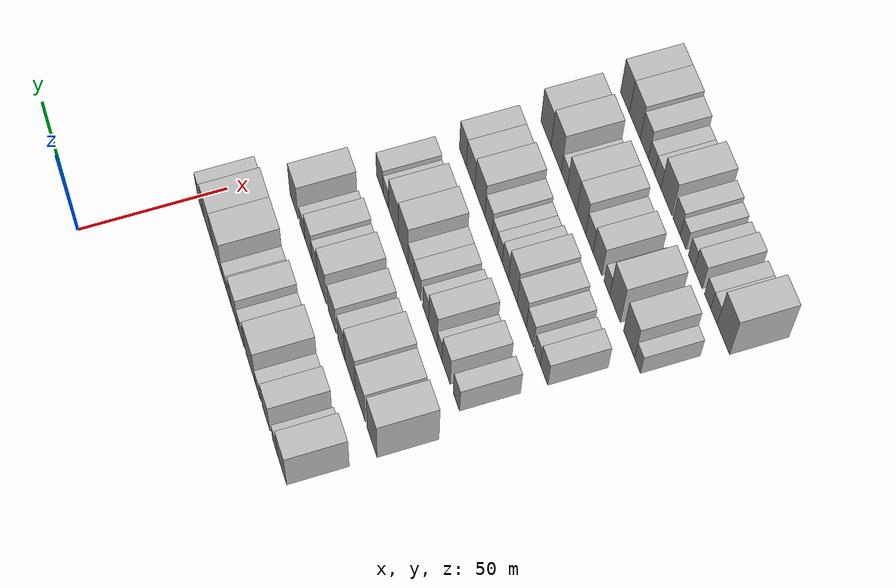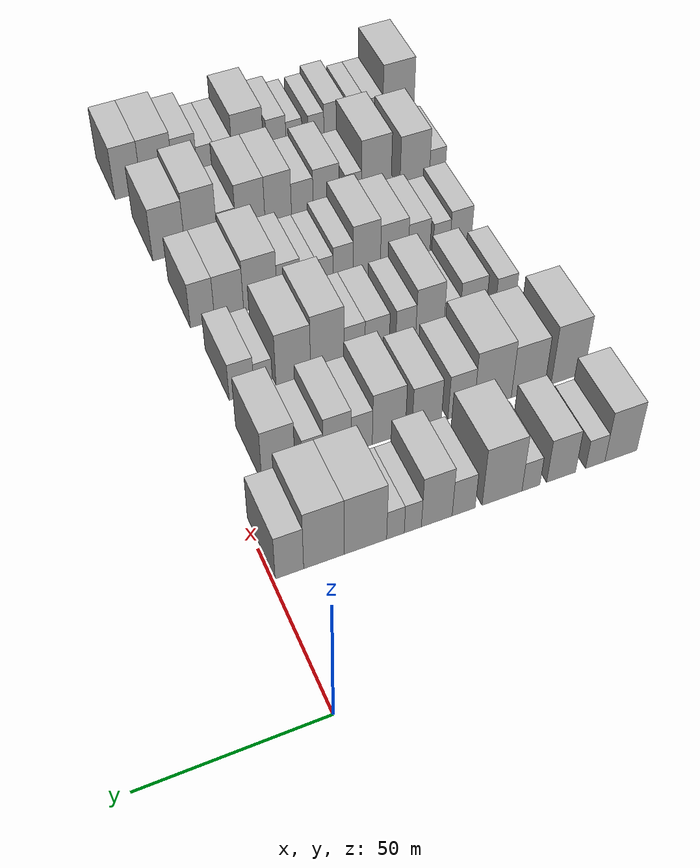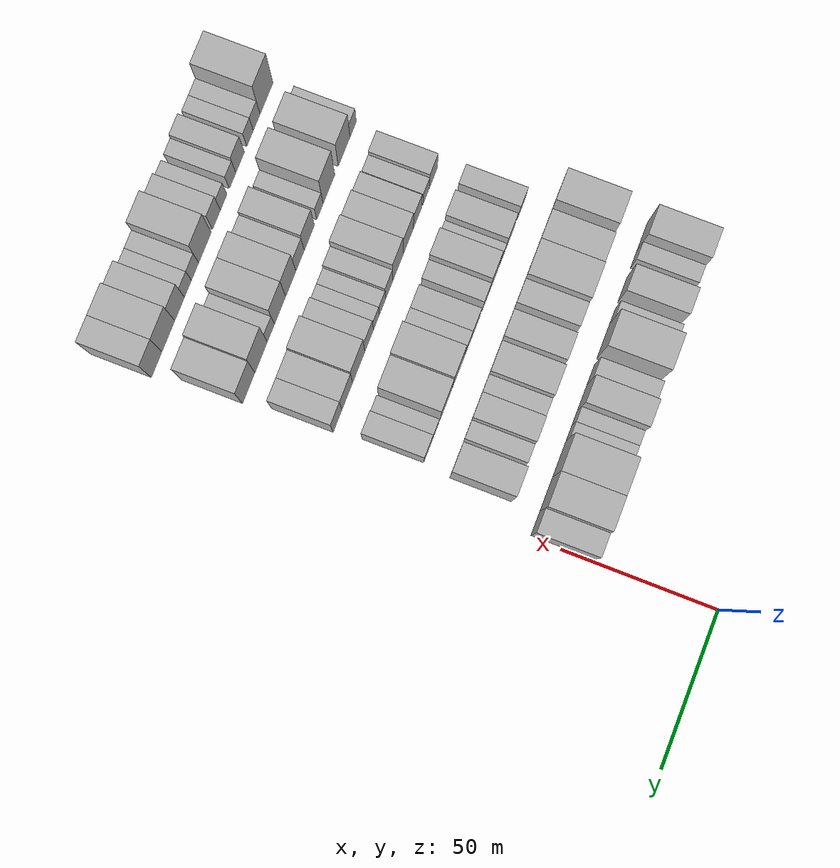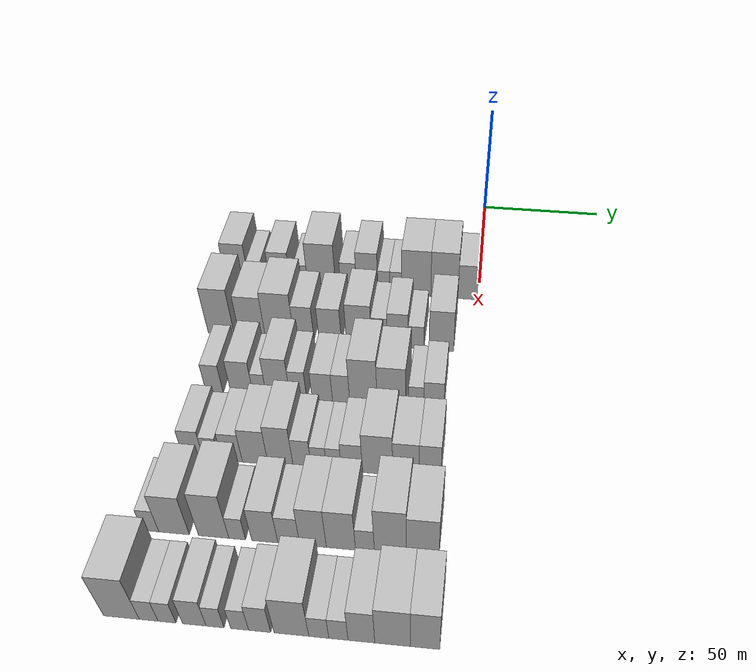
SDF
<sdf version="1.6">
 <world name="default">
  <model name="building_48">
   <static>1</static>
   <pose>50.0000 -99.4490 0 0.000000 0.000000 0.000000</pose>
   <link name="link">
    <pose>0 0 10.50 0 0 0</pose>
    <collision name="collision"><geometry><box><size>20.0000 9.6778 21.0000</size></box></geometry></collision>
    <visual name="visual">
     <cast_shadows>0</cast_shadows>
     <geometry><box><size>20.0000 9.6778 21.0000</size></box></geometry>
     <material>
      <script>
       <uri>model://HANNAS_wall/materials/scripts</uri>
       <uri>model://HANNAS_wall/materials/textures</uri>
       <name>vrc/HANNAS_wall</name>
      </script>
     </material>
    </visual>
   </link>
  </model>
  <model name="building_49">
   <static>1</static>
   <pose>50.0000 -91.7192 0 0.000000 0.000000 0.000000</pose>
   <link name="link">
    <pose>0 0 6.00 0 0 0</pose>
    <collision name="collision"><geometry><box><size>20.0000 5.7819 12.0000</size></box></geometry></collision>
    <visual name="visual">
     <cast_shadows>0</cast_shadows>
     <geometry><box><size>20.0000 5.7819 12.0000</size></box></geometry>
     <material>
      <script>
       <uri>model://HANNAS_wall/materials/scripts</uri>
       <uri>model://HANNAS_wall/materials/textures</uri>
       <name>vrc/HANNAS_wall</name>
      </script>
     </material>
    </visual>
   </link>
  </model>
  <model name="building_50">
   <static>1</static>
   <pose>50.0000 -81.5380 0 0.000000 0.000000 0.000000</pose>
   <link name="link">
    <pose>0 0 9.00 0 0 0</pose>
    <collision name="collision"><geometry><box><size>20.0000 8.5805 18.0000</size></box></geometry></collision>
    <visual name="visual">
     <cast_shadows>0</cast_shadows>
     <geometry><box><size>20.0000 8.5805 18.0000</size></box></geometry>
     <material>
      <script>
       <uri>model://HANNAS_wall/materials/scripts</uri>
       <uri>model://HANNAS_wall/materials/textures</uri>
       <name>vrc/HANNAS_wall</name>
      </script>
     </material>
    </visual>
   </link>
  </model>
  <model name="building_51">
   <static>1</static>
   <pose>50.0000 -72.6085 0 0.000000 0.000000 0.000000</pose>
   <link name="link">
    <pose>0 0 6.00 0 0 0</pose>
    <collision name="collision"><geometry><box><size>20.0000 5.2785 12.0000</size></box></geometry></collision>
    <visual name="visual">
     <cast_shadows>0</cast_shadows>
     <geometry><box><size>20.0000 5.2785 12.0000</size></box></geometry>
     <material>
      <script>
       <uri>model://HANNAS_wall/materials/scripts</uri>
       <uri>model://HANNAS_wall/materials/textures</uri>
       <name>vrc/HANNAS_wall</name>
      </script>
     </material>
    </visual>
   </link>
  </model>
  <model name="building_52">
   <static>1</static>
   <pose>50.0000 -64.1771 0 0.000000 0.000000 0.000000</pose>
   <link name="link">
    <pose>0 0 12.00 0 0 0</pose>
    <collision name="collision"><geometry><box><size>20.0000 11.5843 24.0000</size></box></geometry></collision>
    <visual name="visual">
     <cast_shadows>0</cast_shadows>
     <geometry><box><size>20.0000 11.5843 24.0000</size></box></geometry>
     <material>
      <script>
       <uri>model://HANNAS_wall/materials/scripts</uri>
       <uri>model://HANNAS_wall/materials/textures</uri>
       <name>vrc/HANNAS_wall</name>
      </script>
     </material>
    </visual>
   </link>
  </model>
  <model name="building_53">
   <static>1</static>
   <pose>50.0000 -53.0841 0 0.000000 0.000000 0.000000</pose>
   <link name="link">
    <pose>0 0 7.50 0 0 0</pose>
    <collision name="collision"><geometry><box><size>20.0000 6.6016 15.0000</size></box></geometry></collision>
    <visual name="visual">
     <cast_shadows>0</cast_shadows>
     <geometry><box><size>20.0000 6.6016 15.0000</size></box></geometry>
     <material>
      <script>
       <uri>model://HANNAS_wall/materials/scripts</uri>
       <uri>model://HANNAS_wall/materials/textures</uri>
       <name>vrc/HANNAS_wall</name>
      </script>
     </material>
    </visual>
   </link>
  </model>
  <model name="building_54">
   <static>1</static>
   <pose>50.0000 -45.4095 0 0.000000 0.000000 0.000000</pose>
   <link name="link">
    <pose>0 0 10.50 0 0 0</pose>
    <collision name="collision"><geometry><box><size>20.0000 8.7476 21.0000</size></box></geometry></collision>
    <visual name="visual">
     <cast_shadows>0</cast_shadows>
     <geometry><box><size>20.0000 8.7476 21.0000</size></box></geometry>
     <material>
      <script>
       <uri>model://HANNAS_wall/materials/scripts</uri>
       <uri>model://HANNAS_wall/materials/textures</uri>
       <name>vrc/HANNAS_wall</name>
      </script>
     </material>
    </visual>
   </link>
  </model>
  <model name="building_55">
   <static>1</static>
   <pose>50.0000 -38.6242 0 0.000000 0.000000 0.000000</pose>
   <link name="link">
    <pose>0 0 6.00 0 0 0</pose>
    <collision name="collision"><geometry><box><size>20.0000 4.8231 12.0000</size></box></geometry></collision>
    <visual name="visual">
     <cast_shadows>0</cast_shadows>
     <geometry><box><size>20.0000 4.8231 12.0000</size></box></geometry>
     <material>
      <script>
       <uri>model://HANNAS_wall/materials/scripts</uri>
       <uri>model://HANNAS_wall/materials/textures</uri>
       <name>vrc/HANNAS_wall</name>
      </script>
     </material>
    </visual>
   </link>
  </model>
  <model name="building_56">
   <static>1</static>
   <pose>50.0000 -33.7428 0 0.000000 0.000000 0.000000</pose>
   <link name="link">
    <pose>0 0 6.00 0 0 0</pose>
    <collision name="collision"><geometry><box><size>20.0000 4.9397 12.0000</size></box></geometry></collision>
    <visual name="visual">
     <cast_shadows>0</cast_shadows>
     <geometry><box><size>20.0000 4.9397 12.0000</size></box></geometry>
     <material>
      <script>
       <uri>model://HANNAS_wall/materials/scripts</uri>
       <uri>model://HANNAS_wall/materials/textures</uri>
       <name>vrc/HANNAS_wall</name>
      </script>
     </material>
    </visual>
   </link>
  </model>
  <model name="building_57">
   <static>1</static>
   <pose>50.0000 -25.3672 0 0.000000 0.000000 0.000000</pose>
   <link name="link">
    <pose>0 0 12.00 0 0 0</pose>
    <collision name="collision"><geometry><box><size>20.0000 11.8115 24.0000</size></box></geometry></collision>
    <visual name="visual">
     <cast_shadows>0</cast_shadows>
     <geometry><box><size>20.0000 11.8115 24.0000</size></box></geometry>
     <material>
      <script>
       <uri>model://HANNAS_wall/materials/scripts</uri>
       <uri>model://HANNAS_wall/materials/textures</uri>
       <name>vrc/HANNAS_wall</name>
      </script>
     </material>
    </visual>
   </link>
  </model>
  <model name="building_58">
   <static>1</static>
   <pose>50.0000 -13.9594 0 0.000000 0.000000 0.000000</pose>
   <link name="link">
    <pose>0 0 12.00 0 0 0</pose>
    <collision name="collision"><geometry><box><size>20.0000 11.0040 24.0000</size></box></geometry></collision>
    <visual name="visual">
     <cast_shadows>0</cast_shadows>
     <geometry><box><size>20.0000 11.0040 24.0000</size></box></geometry>
     <material>
      <script>
       <uri>model://HANNAS_wall/materials/scripts</uri>
       <uri>model://HANNAS_wall/materials/textures</uri>
       <name>vrc/HANNAS_wall</name>
      </script>
     </material>
    </visual>
   </link>
  </model>
  <model name="building_59">
   <static>1</static>
   <pose>50.0000 -4.6016 0 0.000000 0.000000 0.000000</pose>
   <link name="link">
    <pose>0 0 9.00 0 0 0</pose>
    <collision name="collision"><geometry><box><size>20.0000 7.7116 18.0000</size></box></geometry></collision>
    <visual name="visual">
     <cast_shadows>0</cast_shadows>
     <geometry><box><size>20.0000 7.7116 18.0000</size></box></geometry>
     <material>
      <script>
       <uri>model://HANNAS_wall/materials/scripts</uri>
       <uri>model://HANNAS_wall/materials/textures</uri>
       <name>vrc/HANNAS_wall</name>
      </script>
     </material>
    </visual>
   </link>
  </model>
  <model name="building_168">
   <static>1</static>
   <pose>79.0000 -98.8803 0 0.000000 0.000000 0.000000</pose>
   <link name="link">
    <pose>0 0 12.00 0 0 0</pose>
    <collision name="collision"><geometry><box><size>20.0000 10.3517 24.0000</size></box></geometry></collision>
    <visual name="visual">
     <cast_shadows>0</cast_shadows>
     <geometry><box><size>20.0000 10.3517 24.0000</size></box></geometry>
     <material>
      <script>
       <uri>model://HANNAS_wall/materials/scripts</uri>
       <uri>model://HANNAS_wall/materials/textures</uri>
       <name>vrc/HANNAS_wall</name>
      </script>
     </material>
    </visual>
   </link>
  </model>
  <model name="building_169">
   <static>1</static>
   <pose>79.0000 -86.5375 0 0.000000 0.000000 0.000000</pose>
   <link name="link">
    <pose>0 0 10.50 0 0 0</pose>
    <collision name="collision"><geometry><box><size>20.0000 10.3338 21.0000</size></box></geometry></collision>
    <visual name="visual">
     <cast_shadows>0</cast_shadows>
     <geometry><box><size>20.0000 10.3338 21.0000</size></box></geometry>
     <material>
      <script>
       <uri>model://HANNAS_wall/materials/scripts</uri>
       <uri>model://HANNAS_wall/materials/textures</uri>
       <name>vrc/HANNAS_wall</name>
      </script>
     </material>
    </visual>
   </link>
  </model>
  <model name="building_170">
   <static>1</static>
   <pose>79.0000 -75.6634 0 0.000000 0.000000 0.000000</pose>
   <link name="link">
    <pose>0 0 12.00 0 0 0</pose>
    <collision name="collision"><geometry><box><size>20.0000 11.4143 24.0000</size></box></geometry></collision>
    <visual name="visual">
     <cast_shadows>0</cast_shadows>
     <geometry><box><size>20.0000 11.4143 24.0000</size></box></geometry>
     <material>
      <script>
       <uri>model://HANNAS_wall/materials/scripts</uri>
       <uri>model://HANNAS_wall/materials/textures</uri>
       <name>vrc/HANNAS_wall</name>
      </script>
     </material>
    </visual>
   </link>
  </model>
  <model name="building_171">
   <static>1</static>
   <pose>79.0000 -66.0742 0 0.000000 0.000000 0.000000</pose>
   <link name="link">
    <pose>0 0 9.00 0 0 0</pose>
    <collision name="collision"><geometry><box><size>20.0000 7.7640 18.0000</size></box></geometry></collision>
    <visual name="visual">
     <cast_shadows>0</cast_shadows>
     <geometry><box><size>20.0000 7.7640 18.0000</size></box></geometry>
     <material>
      <script>
       <uri>model://HANNAS_wall/materials/scripts</uri>
       <uri>model://HANNAS_wall/materials/textures</uri>
       <name>vrc/HANNAS_wall</name>
      </script>
     </material>
    </visual>
   </link>
  </model>
  <model name="building_172">
   <static>1</static>
   <pose>79.0000 -55.8315 0 0.000000 0.000000 0.000000</pose>
   <link name="link">
    <pose>0 0 9.00 0 0 0</pose>
    <collision name="collision"><geometry><box><size>20.0000 8.7214 18.0000</size></box></geometry></collision>
    <visual name="visual">
     <cast_shadows>0</cast_shadows>
     <geometry><box><size>20.0000 8.7214 18.0000</size></box></geometry>
     <material>
      <script>
       <uri>model://HANNAS_wall/materials/scripts</uri>
       <uri>model://HANNAS_wall/materials/textures</uri>
       <name>vrc/HANNAS_wall</name>
      </script>
     </material>
    </visual>
   </link>
  </model>
  <model name="building_173">
   <static>1</static>
   <pose>79.0000 -44.6294 0 0.000000 0.000000 0.000000</pose>
   <link name="link">
    <pose>0 0 10.50 0 0 0</pose>
    <collision name="collision"><geometry><box><size>20.0000 9.6827 21.0000</size></box></geometry></collision>
    <visual name="visual">
     <cast_shadows>0</cast_shadows>
     <geometry><box><size>20.0000 9.6827 21.0000</size></box></geometry>
     <material>
      <script>
       <uri>model://HANNAS_wall/materials/scripts</uri>
       <uri>model://HANNAS_wall/materials/textures</uri>
       <name>vrc/HANNAS_wall</name>
      </script>
     </material>
    </visual>
   </link>
  </model>
  <model name="building_174">
   <static>1</static>
   <pose>79.0000 -36.7364 0 0.000000 0.000000 0.000000</pose>
   <link name="link">
    <pose>0 0 7.50 0 0 0</pose>
    <collision name="collision"><geometry><box><size>20.0000 6.1034 15.0000</size></box></geometry></collision>
    <visual name="visual">
     <cast_shadows>0</cast_shadows>
     <geometry><box><size>20.0000 6.1034 15.0000</size></box></geometry>
     <material>
      <script>
       <uri>model://HANNAS_wall/materials/scripts</uri>
       <uri>model://HANNAS_wall/materials/textures</uri>
       <name>vrc/HANNAS_wall</name>
      </script>
     </material>
    </visual>
   </link>
  </model>
  <model name="building_175">
   <static>1</static>
   <pose>79.0000 -29.6287 0 0.000000 0.000000 0.000000</pose>
   <link name="link">
    <pose>0 0 9.00 0 0 0</pose>
    <collision name="collision"><geometry><box><size>20.0000 8.1119 18.0000</size></box></geometry></collision>
    <visual name="visual">
     <cast_shadows>0</cast_shadows>
     <geometry><box><size>20.0000 8.1119 18.0000</size></box></geometry>
     <material>
      <script>
       <uri>model://HANNAS_wall/materials/scripts</uri>
       <uri>model://HANNAS_wall/materials/textures</uri>
       <name>vrc/HANNAS_wall</name>
      </script>
     </material>
    </visual>
   </link>
  </model>
  <model name="building_176">
   <static>1</static>
   <pose>79.0000 -22.5768 0 0.000000 0.000000 0.000000</pose>
   <link name="link">
    <pose>0 0 6.00 0 0 0</pose>
    <collision name="collision"><geometry><box><size>20.0000 5.9920 12.0000</size></box></geometry></collision>
    <visual name="visual">
     <cast_shadows>0</cast_shadows>
     <geometry><box><size>20.0000 5.9920 12.0000</size></box></geometry>
     <material>
      <script>
       <uri>model://HANNAS_wall/materials/scripts</uri>
       <uri>model://HANNAS_wall/materials/textures</uri>
       <name>vrc/HANNAS_wall</name>
      </script>
     </material>
    </visual>
   </link>
  </model>
  <model name="building_177">
   <static>1</static>
   <pose>79.0000 -12.8786 0 0.000000 0.000000 0.000000</pose>
   <link name="link">
    <pose>0 0 10.50 0 0 0</pose>
    <collision name="collision"><geometry><box><size>20.0000 9.4045 21.0000</size></box></geometry></collision>
    <visual name="visual">
     <cast_shadows>0</cast_shadows>
     <geometry><box><size>20.0000 9.4045 21.0000</size></box></geometry>
     <material>
      <script>
       <uri>model://HANNAS_wall/materials/scripts</uri>
       <uri>model://HANNAS_wall/materials/textures</uri>
       <name>vrc/HANNAS_wall</name>
      </script>
     </material>
    </visual>
   </link>
  </model>
  <model name="building_277">
   <static>1</static>
   <pose>108.0000 -93.7986 0 0.000000 0.000000 0.000000</pose>
   <link name="link">
    <pose>0 0 7.50 0 0 0</pose>
    <collision name="collision"><geometry><box><size>20.0000 6.4289 15.0000</size></box></geometry></collision>
    <visual name="visual">
     <cast_shadows>0</cast_shadows>
     <geometry><box><size>20.0000 6.4289 15.0000</size></box></geometry>
     <material>
      <script>
       <uri>model://HANNAS_wall/materials/scripts</uri>
       <uri>model://HANNAS_wall/materials/textures</uri>
       <name>vrc/HANNAS_wall</name>
      </script>
     </material>
    </visual>
   </link>
  </model>
  <model name="building_278">
   <static>1</static>
   <pose>108.0000 -83.4636 0 0.000000 0.000000 0.000000</pose>
   <link name="link">
    <pose>0 0 9.00 0 0 0</pose>
    <collision name="collision"><geometry><box><size>20.0000 8.2410 18.0000</size></box></geometry></collision>
    <visual name="visual">
     <cast_shadows>0</cast_shadows>
     <geometry><box><size>20.0000 8.2410 18.0000</size></box></geometry>
     <material>
      <script>
       <uri>model://HANNAS_wall/materials/scripts</uri>
       <uri>model://HANNAS_wall/materials/textures</uri>
       <name>vrc/HANNAS_wall</name>
      </script>
     </material>
    </visual>
   </link>
  </model>
  <model name="building_279">
   <static>1</static>
   <pose>108.0000 -76.8658 0 0.000000 0.000000 0.000000</pose>
   <link name="link">
    <pose>0 0 6.00 0 0 0</pose>
    <collision name="collision"><geometry><box><size>20.0000 4.9545 12.0000</size></box></geometry></collision>
    <visual name="visual">
     <cast_shadows>0</cast_shadows>
     <geometry><box><size>20.0000 4.9545 12.0000</size></box></geometry>
     <material>
      <script>
       <uri>model://HANNAS_wall/materials/scripts</uri>
       <uri>model://HANNAS_wall/materials/textures</uri>
       <name>vrc/HANNAS_wall</name>
      </script>
     </material>
    </visual>
   </link>
  </model>
  <model name="building_280">
   <static>1</static>
   <pose>108.0000 -70.0116 0 0.000000 0.000000 0.000000</pose>
   <link name="link">
    <pose>0 0 10.50 0 0 0</pose>
    <collision name="collision"><geometry><box><size>20.0000 8.7540 21.0000</size></box></geometry></collision>
    <visual name="visual">
     <cast_shadows>0</cast_shadows>
     <geometry><box><size>20.0000 8.7540 21.0000</size></box></geometry>
     <material>
      <script>
       <uri>model://HANNAS_wall/materials/scripts</uri>
       <uri>model://HANNAS_wall/materials/textures</uri>
       <name>vrc/HANNAS_wall</name>
      </script>
     </material>
    </visual>
   </link>
  </model>
  <model name="building_281">
   <static>1</static>
   <pose>108.0000 -62.5706 0 0.000000 0.000000 0.000000</pose>
   <link name="link">
    <pose>0 0 7.50 0 0 0</pose>
    <collision name="collision"><geometry><box><size>20.0000 6.1279 15.0000</size></box></geometry></collision>
    <visual name="visual">
     <cast_shadows>0</cast_shadows>
     <geometry><box><size>20.0000 6.1279 15.0000</size></box></geometry>
     <material>
      <script>
       <uri>model://HANNAS_wall/materials/scripts</uri>
       <uri>model://HANNAS_wall/materials/textures</uri>
       <name>vrc/HANNAS_wall</name>
      </script>
     </material>
    </visual>
   </link>
  </model>
  <model name="building_282">
   <static>1</static>
   <pose>108.0000 -53.7778 0 0.000000 0.000000 0.000000</pose>
   <link name="link">
    <pose>0 0 7.50 0 0 0</pose>
    <collision name="collision"><geometry><box><size>20.0000 7.4578 15.0000</size></box></geometry></collision>
    <visual name="visual">
     <cast_shadows>0</cast_shadows>
     <geometry><box><size>20.0000 7.4578 15.0000</size></box></geometry>
     <material>
      <script>
       <uri>model://HANNAS_wall/materials/scripts</uri>
       <uri>model://HANNAS_wall/materials/textures</uri>
       <name>vrc/HANNAS_wall</name>
      </script>
     </material>
    </visual>
   </link>
  </model>
  <model name="building_283">
   <static>1</static>
   <pose>108.0000 -46.9006 0 0.000000 0.000000 0.000000</pose>
   <link name="link">
    <pose>0 0 7.50 0 0 0</pose>
    <collision name="collision"><geometry><box><size>20.0000 6.2965 15.0000</size></box></geometry></collision>
    <visual name="visual">
     <cast_shadows>0</cast_shadows>
     <geometry><box><size>20.0000 6.2965 15.0000</size></box></geometry>
     <material>
      <script>
       <uri>model://HANNAS_wall/materials/scripts</uri>
       <uri>model://HANNAS_wall/materials/textures</uri>
       <name>vrc/HANNAS_wall</name>
      </script>
     </material>
    </visual>
   </link>
  </model>
  <model name="building_284">
   <static>1</static>
   <pose>108.0000 -38.7299 0 0.000000 0.000000 0.000000</pose>
   <link name="link">
    <pose>0 0 12.00 0 0 0</pose>
    <collision name="collision"><geometry><box><size>20.0000 10.0448 24.0000</size></box></geometry></collision>
    <visual name="visual">
     <cast_shadows>0</cast_shadows>
     <geometry><box><size>20.0000 10.0448 24.0000</size></box></geometry>
     <material>
      <script>
       <uri>model://HANNAS_wall/materials/scripts</uri>
       <uri>model://HANNAS_wall/materials/textures</uri>
       <name>vrc/HANNAS_wall</name>
      </script>
     </material>
    </visual>
   </link>
  </model>
  <model name="building_285">
   <static>1</static>
   <pose>108.0000 -28.5250 0 0.000000 0.000000 0.000000</pose>
   <link name="link">
    <pose>0 0 10.50 0 0 0</pose>
    <collision name="collision"><geometry><box><size>20.0000 10.3651 21.0000</size></box></geometry></collision>
    <visual name="visual">
     <cast_shadows>0</cast_shadows>
     <geometry><box><size>20.0000 10.3651 21.0000</size></box></geometry>
     <material>
      <script>
       <uri>model://HANNAS_wall/materials/scripts</uri>
       <uri>model://HANNAS_wall/materials/textures</uri>
       <name>vrc/HANNAS_wall</name>
      </script>
     </material>
    </visual>
   </link>
  </model>
  <model name="building_286">
   <static>1</static>
   <pose>108.0000 -19.6412 0 0.000000 0.000000 0.000000</pose>
   <link name="link">
    <pose>0 0 6.00 0 0 0</pose>
    <collision name="collision"><geometry><box><size>20.0000 5.4024 12.0000</size></box></geometry></collision>
    <visual name="visual">
     <cast_shadows>0</cast_shadows>
     <geometry><box><size>20.0000 5.4024 12.0000</size></box></geometry>
     <material>
      <script>
       <uri>model://HANNAS_wall/materials/scripts</uri>
       <uri>model://HANNAS_wall/materials/textures</uri>
       <name>vrc/HANNAS_wall</name>
      </script>
     </material>
    </visual>
   </link>
  </model>
  <model name="building_287">
   <static>1</static>
   <pose>108.0000 -13.2912 0 0.000000 0.000000 0.000000</pose>
   <link name="link">
    <pose>0 0 7.50 0 0 0</pose>
    <collision name="collision"><geometry><box><size>20.0000 7.2976 15.0000</size></box></geometry></collision>
    <visual name="visual">
     <cast_shadows>0</cast_shadows>
     <geometry><box><size>20.0000 7.2976 15.0000</size></box></geometry>
     <material>
      <script>
       <uri>model://HANNAS_wall/materials/scripts</uri>
       <uri>model://HANNAS_wall/materials/textures</uri>
       <name>vrc/HANNAS_wall</name>
      </script>
     </material>
    </visual>
   </link>
  </model>
  <model name="building_393">
   <static>1</static>
   <pose>137.0000 -93.5222 0 0.000000 0.000000 0.000000</pose>
   <link name="link">
    <pose>0 0 7.50 0 0 0</pose>
    <collision name="collision"><geometry><box><size>20.0000 7.0645 15.0000</size></box></geometry></collision>
    <visual name="visual">
     <cast_shadows>0</cast_shadows>
     <geometry><box><size>20.0000 7.0645 15.0000</size></box></geometry>
     <material>
      <script>
       <uri>model://HANNAS_wall/materials/scripts</uri>
       <uri>model://HANNAS_wall/materials/textures</uri>
       <name>vrc/HANNAS_wall</name>
      </script>
     </material>
    </visual>
   </link>
  </model>
  <model name="building_394">
   <static>1</static>
   <pose>137.0000 -87.2176 0 0.000000 0.000000 0.000000</pose>
   <link name="link">
    <pose>0 0 6.00 0 0 0</pose>
    <collision name="collision"><geometry><box><size>20.0000 5.5447 12.0000</size></box></geometry></collision>
    <visual name="visual">
     <cast_shadows>0</cast_shadows>
     <geometry><box><size>20.0000 5.5447 12.0000</size></box></geometry>
     <material>
      <script>
       <uri>model://HANNAS_wall/materials/scripts</uri>
       <uri>model://HANNAS_wall/materials/textures</uri>
       <name>vrc/HANNAS_wall</name>
      </script>
     </material>
    </visual>
   </link>
  </model>
  <model name="building_395">
   <static>1</static>
   <pose>137.0000 -79.9002 0 0.000000 0.000000 0.000000</pose>
   <link name="link">
    <pose>0 0 7.50 0 0 0</pose>
    <collision name="collision"><geometry><box><size>20.0000 7.0901 15.0000</size></box></geometry></collision>
    <visual name="visual">
     <cast_shadows>0</cast_shadows>
     <geometry><box><size>20.0000 7.0901 15.0000</size></box></geometry>
     <material>
      <script>
       <uri>model://HANNAS_wall/materials/scripts</uri>
       <uri>model://HANNAS_wall/materials/textures</uri>
       <name>vrc/HANNAS_wall</name>
      </script>
     </material>
    </visual>
   </link>
  </model>
  <model name="building_396">
   <static>1</static>
   <pose>137.0000 -71.8808 0 0.000000 0.000000 0.000000</pose>
   <link name="link">
    <pose>0 0 9.00 0 0 0</pose>
    <collision name="collision"><geometry><box><size>20.0000 8.9487 18.0000</size></box></geometry></collision>
    <visual name="visual">
     <cast_shadows>0</cast_shadows>
     <geometry><box><size>20.0000 8.9487 18.0000</size></box></geometry>
     <material>
      <script>
       <uri>model://HANNAS_wall/materials/scripts</uri>
       <uri>model://HANNAS_wall/materials/textures</uri>
       <name>vrc/HANNAS_wall</name>
      </script>
     </material>
    </visual>
   </link>
  </model>
  <model name="building_397">
   <static>1</static>
   <pose>137.0000 -63.0772 0 0.000000 0.000000 0.000000</pose>
   <link name="link">
    <pose>0 0 10.50 0 0 0</pose>
    <collision name="collision"><geometry><box><size>20.0000 8.6587 21.0000</size></box></geometry></collision>
    <visual name="visual">
     <cast_shadows>0</cast_shadows>
     <geometry><box><size>20.0000 8.6587 21.0000</size></box></geometry>
     <material>
      <script>
       <uri>model://HANNAS_wall/materials/scripts</uri>
       <uri>model://HANNAS_wall/materials/textures</uri>
       <name>vrc/HANNAS_wall</name>
      </script>
     </material>
    </visual>
   </link>
  </model>
  <model name="building_398">
   <static>1</static>
   <pose>137.0000 -55.6128 0 0.000000 0.000000 0.000000</pose>
   <link name="link">
    <pose>0 0 7.50 0 0 0</pose>
    <collision name="collision"><geometry><box><size>20.0000 6.2700 15.0000</size></box></geometry></collision>
    <visual name="visual">
     <cast_shadows>0</cast_shadows>
     <geometry><box><size>20.0000 6.2700 15.0000</size></box></geometry>
     <material>
      <script>
       <uri>model://HANNAS_wall/materials/scripts</uri>
       <uri>model://HANNAS_wall/materials/textures</uri>
       <name>vrc/HANNAS_wall</name>
      </script>
     </material>
    </visual>
   </link>
  </model>
  <model name="building_399">
   <static>1</static>
   <pose>137.0000 -49.8597 0 0.000000 0.000000 0.000000</pose>
   <link name="link">
    <pose>0 0 6.00 0 0 0</pose>
    <collision name="collision"><geometry><box><size>20.0000 5.2362 12.0000</size></box></geometry></collision>
    <visual name="visual">
     <cast_shadows>0</cast_shadows>
     <geometry><box><size>20.0000 5.2362 12.0000</size></box></geometry>
     <material>
      <script>
       <uri>model://HANNAS_wall/materials/scripts</uri>
       <uri>model://HANNAS_wall/materials/textures</uri>
       <name>vrc/HANNAS_wall</name>
      </script>
     </material>
    </visual>
   </link>
  </model>
  <model name="building_400">
   <static>1</static>
   <pose>137.0000 -44.7016 0 0.000000 0.000000 0.000000</pose>
   <link name="link">
    <pose>0 0 6.00 0 0 0</pose>
    <collision name="collision"><geometry><box><size>20.0000 5.0801 12.0000</size></box></geometry></collision>
    <visual name="visual">
     <cast_shadows>0</cast_shadows>
     <geometry><box><size>20.0000 5.0801 12.0000</size></box></geometry>
     <material>
      <script>
       <uri>model://HANNAS_wall/materials/scripts</uri>
       <uri>model://HANNAS_wall/materials/textures</uri>
       <name>vrc/HANNAS_wall</name>
      </script>
     </material>
    </visual>
   </link>
  </model>
  <model name="building_401">
   <static>1</static>
   <pose>137.0000 -38.5460 0 0.000000 0.000000 0.000000</pose>
   <link name="link">
    <pose>0 0 7.50 0 0 0</pose>
    <collision name="collision"><geometry><box><size>20.0000 7.2311 15.0000</size></box></geometry></collision>
    <visual name="visual">
     <cast_shadows>0</cast_shadows>
     <geometry><box><size>20.0000 7.2311 15.0000</size></box></geometry>
     <material>
      <script>
       <uri>model://HANNAS_wall/materials/scripts</uri>
       <uri>model://HANNAS_wall/materials/textures</uri>
       <name>vrc/HANNAS_wall</name>
      </script>
     </material>
    </visual>
   </link>
  </model>
  <model name="building_402">
   <static>1</static>
   <pose>137.0000 -29.7799 0 0.000000 0.000000 0.000000</pose>
   <link name="link">
    <pose>0 0 10.50 0 0 0</pose>
    <collision name="collision"><geometry><box><size>20.0000 10.3010 21.0000</size></box></geometry></collision>
    <visual name="visual">
     <cast_shadows>0</cast_shadows>
     <geometry><box><size>20.0000 10.3010 21.0000</size></box></geometry>
     <material>
      <script>
       <uri>model://HANNAS_wall/materials/scripts</uri>
       <uri>model://HANNAS_wall/materials/textures</uri>
       <name>vrc/HANNAS_wall</name>
      </script>
     </material>
    </visual>
   </link>
  </model>
  <model name="building_403">
   <static>1</static>
   <pose>137.0000 -20.1902 0 0.000000 0.000000 0.000000</pose>
   <link name="link">
    <pose>0 0 9.00 0 0 0</pose>
    <collision name="collision"><geometry><box><size>20.0000 8.8785 18.0000</size></box></geometry></collision>
    <visual name="visual">
     <cast_shadows>0</cast_shadows>
     <geometry><box><size>20.0000 8.8785 18.0000</size></box></geometry>
     <material>
      <script>
       <uri>model://HANNAS_wall/materials/scripts</uri>
       <uri>model://HANNAS_wall/materials/textures</uri>
       <name>vrc/HANNAS_wall</name>
      </script>
     </material>
    </visual>
   </link>
  </model>
  <model name="building_404">
   <static>1</static>
   <pose>137.0000 -12.0774 0 0.000000 0.000000 0.000000</pose>
   <link name="link">
    <pose>0 0 9.00 0 0 0</pose>
    <collision name="collision"><geometry><box><size>20.0000 7.3470 18.0000</size></box></geometry></collision>
    <visual name="visual">
     <cast_shadows>0</cast_shadows>
     <geometry><box><size>20.0000 7.3470 18.0000</size></box></geometry>
     <material>
      <script>
       <uri>model://HANNAS_wall/materials/scripts</uri>
       <uri>model://HANNAS_wall/materials/textures</uri>
       <name>vrc/HANNAS_wall</name>
      </script>
     </material>
    </visual>
   </link>
  </model>
  <model name="building_500">
   <static>1</static>
   <pose>166.0000 -99.2865 0 0.000000 0.000000 0.000000</pose>
   <link name="link">
    <pose>0 0 6.00 0 0 0</pose>
    <collision name="collision"><geometry><box><size>20.0000 5.3967 12.0000</size></box></geometry></collision>
    <visual name="visual">
     <cast_shadows>0</cast_shadows>
     <geometry><box><size>20.0000 5.3967 12.0000</size></box></geometry>
     <material>
      <script>
       <uri>model://HANNAS_wall/materials/scripts</uri>
       <uri>model://HANNAS_wall/materials/textures</uri>
       <name>vrc/HANNAS_wall</name>
      </script>
     </material>
    </visual>
   </link>
  </model>
  <model name="building_501">
   <static>1</static>
   <pose>166.0000 -91.5967 0 0.000000 0.000000 0.000000</pose>
   <link name="link">
    <pose>0 0 10.50 0 0 0</pose>
    <collision name="collision"><geometry><box><size>20.0000 9.9829 21.0000</size></box></geometry></collision>
    <visual name="visual">
     <cast_shadows>0</cast_shadows>
     <geometry><box><size>20.0000 9.9829 21.0000</size></box></geometry>
     <material>
      <script>
       <uri>model://HANNAS_wall/materials/scripts</uri>
       <uri>model://HANNAS_wall/materials/textures</uri>
       <name>vrc/HANNAS_wall</name>
      </script>
     </material>
    </visual>
   </link>
  </model>
  <model name="building_502">
   <static>1</static>
   <pose>166.0000 -78.6594 0 0.000000 0.000000 0.000000</pose>
   <link name="link">
    <pose>0 0 12.00 0 0 0</pose>
    <collision name="collision"><geometry><box><size>20.0000 9.8918 24.0000</size></box></geometry></collision>
    <visual name="visual">
     <cast_shadows>0</cast_shadows>
     <geometry><box><size>20.0000 9.8918 24.0000</size></box></geometry>
     <material>
      <script>
       <uri>model://HANNAS_wall/materials/scripts</uri>
       <uri>model://HANNAS_wall/materials/textures</uri>
       <name>vrc/HANNAS_wall</name>
      </script>
     </material>
    </visual>
   </link>
  </model>
  <model name="building_503">
   <static>1</static>
   <pose>166.0000 -71.0142 0 0.000000 0.000000 0.000000</pose>
   <link name="link">
    <pose>0 0 6.00 0 0 0</pose>
    <collision name="collision"><geometry><box><size>20.0000 5.3987 12.0000</size></box></geometry></collision>
    <visual name="visual">
     <cast_shadows>0</cast_shadows>
     <geometry><box><size>20.0000 5.3987 12.0000</size></box></geometry>
     <material>
      <script>
       <uri>model://HANNAS_wall/materials/scripts</uri>
       <uri>model://HANNAS_wall/materials/textures</uri>
       <name>vrc/HANNAS_wall</name>
      </script>
     </material>
    </visual>
   </link>
  </model>
  <model name="building_504">
   <static>1</static>
   <pose>166.0000 -62.0935 0 0.000000 0.000000 0.000000</pose>
   <link name="link">
    <pose>0 0 9.00 0 0 0</pose>
    <collision name="collision"><geometry><box><size>20.0000 8.4427 18.0000</size></box></geometry></collision>
    <visual name="visual">
     <cast_shadows>0</cast_shadows>
     <geometry><box><size>20.0000 8.4427 18.0000</size></box></geometry>
     <material>
      <script>
       <uri>model://HANNAS_wall/materials/scripts</uri>
       <uri>model://HANNAS_wall/materials/textures</uri>
       <name>vrc/HANNAS_wall</name>
      </script>
     </material>
    </visual>
   </link>
  </model>
  <model name="building_505">
   <static>1</static>
   <pose>166.0000 -54.3457 0 0.000000 0.000000 0.000000</pose>
   <link name="link">
    <pose>0 0 7.50 0 0 0</pose>
    <collision name="collision"><geometry><box><size>20.0000 7.0529 15.0000</size></box></geometry></collision>
    <visual name="visual">
     <cast_shadows>0</cast_shadows>
     <geometry><box><size>20.0000 7.0529 15.0000</size></box></geometry>
     <material>
      <script>
       <uri>model://HANNAS_wall/materials/scripts</uri>
       <uri>model://HANNAS_wall/materials/textures</uri>
       <name>vrc/HANNAS_wall</name>
      </script>
     </material>
    </visual>
   </link>
  </model>
  <model name="building_506">
   <static>1</static>
   <pose>166.0000 -46.5617 0 0.000000 0.000000 0.000000</pose>
   <link name="link">
    <pose>0 0 10.50 0 0 0</pose>
    <collision name="collision"><geometry><box><size>20.0000 8.5152 21.0000</size></box></geometry></collision>
    <visual name="visual">
     <cast_shadows>0</cast_shadows>
     <geometry><box><size>20.0000 8.5152 21.0000</size></box></geometry>
     <material>
      <script>
       <uri>model://HANNAS_wall/materials/scripts</uri>
       <uri>model://HANNAS_wall/materials/textures</uri>
       <name>vrc/HANNAS_wall</name>
      </script>
     </material>
    </visual>
   </link>
  </model>
  <model name="building_507">
   <static>1</static>
   <pose>166.0000 -37.6642 0 0.000000 0.000000 0.000000</pose>
   <link name="link">
    <pose>0 0 10.50 0 0 0</pose>
    <collision name="collision"><geometry><box><size>20.0000 9.2798 21.0000</size></box></geometry></collision>
    <visual name="visual">
     <cast_shadows>0</cast_shadows>
     <geometry><box><size>20.0000 9.2798 21.0000</size></box></geometry>
     <material>
      <script>
       <uri>model://HANNAS_wall/materials/scripts</uri>
       <uri>model://HANNAS_wall/materials/textures</uri>
       <name>vrc/HANNAS_wall</name>
      </script>
     </material>
    </visual>
   </link>
  </model>
  <model name="building_508">
   <static>1</static>
   <pose>166.0000 -30.0377 0 0.000000 0.000000 0.000000</pose>
   <link name="link">
    <pose>0 0 6.00 0 0 0</pose>
    <collision name="collision"><geometry><box><size>20.0000 5.9732 12.0000</size></box></geometry></collision>
    <visual name="visual">
     <cast_shadows>0</cast_shadows>
     <geometry><box><size>20.0000 5.9732 12.0000</size></box></geometry>
     <material>
      <script>
       <uri>model://HANNAS_wall/materials/scripts</uri>
       <uri>model://HANNAS_wall/materials/textures</uri>
       <name>vrc/HANNAS_wall</name>
      </script>
     </material>
    </visual>
   </link>
  </model>
  <model name="building_509">
   <static>1</static>
   <pose>166.0000 -21.9667 0 0.000000 0.000000 0.000000</pose>
   <link name="link">
    <pose>0 0 12.00 0 0 0</pose>
    <collision name="collision"><geometry><box><size>20.0000 10.1688 24.0000</size></box></geometry></collision>
    <visual name="visual">
     <cast_shadows>0</cast_shadows>
     <geometry><box><size>20.0000 10.1688 24.0000</size></box></geometry>
     <material>
      <script>
       <uri>model://HANNAS_wall/materials/scripts</uri>
       <uri>model://HANNAS_wall/materials/textures</uri>
       <name>vrc/HANNAS_wall</name>
      </script>
     </material>
    </visual>
   </link>
  </model>
  <model name="building_510">
   <static>1</static>
   <pose>166.0000 -11.7885 0 0.000000 0.000000 0.000000</pose>
   <link name="link">
    <pose>0 0 10.50 0 0 0</pose>
    <collision name="collision"><geometry><box><size>20.0000 10.1876 21.0000</size></box></geometry></collision>
    <visual name="visual">
     <cast_shadows>0</cast_shadows>
     <geometry><box><size>20.0000 10.1876 21.0000</size></box></geometry>
     <material>
      <script>
       <uri>model://HANNAS_wall/materials/scripts</uri>
       <uri>model://HANNAS_wall/materials/textures</uri>
       <name>vrc/HANNAS_wall</name>
      </script>
     </material>
    </visual>
   </link>
  </model>
  <model name="building_618">
   <static>1</static>
   <pose>195.0000 -98.9054 0 0.000000 0.000000 0.000000</pose>
   <link name="link">
    <pose>0 0 12.00 0 0 0</pose>
    <collision name="collision"><geometry><box><size>20.0000 10.8983 24.0000</size></box></geometry></collision>
    <visual name="visual">
     <cast_shadows>0</cast_shadows>
     <geometry><box><size>20.0000 10.8983 24.0000</size></box></geometry>
     <material>
      <script>
       <uri>model://HANNAS_wall/materials/scripts</uri>
       <uri>model://HANNAS_wall/materials/textures</uri>
       <name>vrc/HANNAS_wall</name>
      </script>
     </material>
    </visual>
   </link>
  </model>
  <model name="building_619">
   <static>1</static>
   <pose>195.0000 -90.5948 0 0.000000 0.000000 0.000000</pose>
   <link name="link">
    <pose>0 0 6.00 0 0 0</pose>
    <collision name="collision"><geometry><box><size>20.0000 5.7229 12.0000</size></box></geometry></collision>
    <visual name="visual">
     <cast_shadows>0</cast_shadows>
     <geometry><box><size>20.0000 5.7229 12.0000</size></box></geometry>
     <material>
      <script>
       <uri>model://HANNAS_wall/materials/scripts</uri>
       <uri>model://HANNAS_wall/materials/textures</uri>
       <name>vrc/HANNAS_wall</name>
      </script>
     </material>
    </visual>
   </link>
  </model>
  <model name="building_620">
   <static>1</static>
   <pose>195.0000 -85.0231 0 0.000000 0.000000 0.000000</pose>
   <link name="link">
    <pose>0 0 6.00 0 0 0</pose>
    <collision name="collision"><geometry><box><size>20.0000 5.4205 12.0000</size></box></geometry></collision>
    <visual name="visual">
     <cast_shadows>0</cast_shadows>
     <geometry><box><size>20.0000 5.4205 12.0000</size></box></geometry>
     <material>
      <script>
       <uri>model://HANNAS_wall/materials/scripts</uri>
       <uri>model://HANNAS_wall/materials/textures</uri>
       <name>vrc/HANNAS_wall</name>
      </script>
     </material>
    </visual>
   </link>
  </model>
  <model name="building_621">
   <static>1</static>
   <pose>195.0000 -76.7599 0 0.000000 0.000000 0.000000</pose>
   <link name="link">
    <pose>0 0 7.50 0 0 0</pose>
    <collision name="collision"><geometry><box><size>20.0000 7.1059 15.0000</size></box></geometry></collision>
    <visual name="visual">
     <cast_shadows>0</cast_shadows>
     <geometry><box><size>20.0000 7.1059 15.0000</size></box></geometry>
     <material>
      <script>
       <uri>model://HANNAS_wall/materials/scripts</uri>
       <uri>model://HANNAS_wall/materials/textures</uri>
       <name>vrc/HANNAS_wall</name>
      </script>
     </material>
    </visual>
   </link>
  </model>
  <model name="building_622">
   <static>1</static>
   <pose>195.0000 -70.5014 0 0.000000 0.000000 0.000000</pose>
   <link name="link">
    <pose>0 0 6.00 0 0 0</pose>
    <collision name="collision"><geometry><box><size>20.0000 5.4111 12.0000</size></box></geometry></collision>
    <visual name="visual">
     <cast_shadows>0</cast_shadows>
     <geometry><box><size>20.0000 5.4111 12.0000</size></box></geometry>
     <material>
      <script>
       <uri>model://HANNAS_wall/materials/scripts</uri>
       <uri>model://HANNAS_wall/materials/textures</uri>
       <name>vrc/HANNAS_wall</name>
      </script>
     </material>
    </visual>
   </link>
  </model>
  <model name="building_623">
   <static>1</static>
   <pose>195.0000 -63.0964 0 0.000000 0.000000 0.000000</pose>
   <link name="link">
    <pose>0 0 6.00 0 0 0</pose>
    <collision name="collision"><geometry><box><size>20.0000 5.3989 12.0000</size></box></geometry></collision>
    <visual name="visual">
     <cast_shadows>0</cast_shadows>
     <geometry><box><size>20.0000 5.3989 12.0000</size></box></geometry>
     <material>
      <script>
       <uri>model://HANNAS_wall/materials/scripts</uri>
       <uri>model://HANNAS_wall/materials/textures</uri>
       <name>vrc/HANNAS_wall</name>
      </script>
     </material>
    </visual>
   </link>
  </model>
  <model name="building_624">
   <static>1</static>
   <pose>195.0000 -57.1117 0 0.000000 0.000000 0.000000</pose>
   <link name="link">
    <pose>0 0 7.50 0 0 0</pose>
    <collision name="collision"><geometry><box><size>20.0000 6.5706 15.0000</size></box></geometry></collision>
    <visual name="visual">
     <cast_shadows>0</cast_shadows>
     <geometry><box><size>20.0000 6.5706 15.0000</size></box></geometry>
     <material>
      <script>
       <uri>model://HANNAS_wall/materials/scripts</uri>
       <uri>model://HANNAS_wall/materials/textures</uri>
       <name>vrc/HANNAS_wall</name>
      </script>
     </material>
    </visual>
   </link>
  </model>
  <model name="building_625">
   <static>1</static>
   <pose>195.0000 -47.6601 0 0.000000 0.000000 0.000000</pose>
   <link name="link">
    <pose>0 0 10.50 0 0 0</pose>
    <collision name="collision"><geometry><box><size>20.0000 10.3326 21.0000</size></box></geometry></collision>
    <visual name="visual">
     <cast_shadows>0</cast_shadows>
     <geometry><box><size>20.0000 10.3326 21.0000</size></box></geometry>
     <material>
      <script>
       <uri>model://HANNAS_wall/materials/scripts</uri>
       <uri>model://HANNAS_wall/materials/textures</uri>
       <name>vrc/HANNAS_wall</name>
      </script>
     </material>
    </visual>
   </link>
  </model>
  <model name="building_626">
   <static>1</static>
   <pose>195.0000 -39.5329 0 0.000000 0.000000 0.000000</pose>
   <link name="link">
    <pose>0 0 6.00 0 0 0</pose>
    <collision name="collision"><geometry><box><size>20.0000 5.9217 12.0000</size></box></geometry></collision>
    <visual name="visual">
     <cast_shadows>0</cast_shadows>
     <geometry><box><size>20.0000 5.9217 12.0000</size></box></geometry>
     <material>
      <script>
       <uri>model://HANNAS_wall/materials/scripts</uri>
       <uri>model://HANNAS_wall/materials/textures</uri>
       <name>vrc/HANNAS_wall</name>
      </script>
     </material>
    </visual>
   </link>
  </model>
  <model name="building_627">
   <static>1</static>
   <pose>195.0000 -33.7343 0 0.000000 0.000000 0.000000</pose>
   <link name="link">
    <pose>0 0 6.00 0 0 0</pose>
    <collision name="collision"><geometry><box><size>20.0000 5.6755 12.0000</size></box></geometry></collision>
    <visual name="visual">
     <cast_shadows>0</cast_shadows>
     <geometry><box><size>20.0000 5.6755 12.0000</size></box></geometry>
     <material>
      <script>
       <uri>model://HANNAS_wall/materials/scripts</uri>
       <uri>model://HANNAS_wall/materials/textures</uri>
       <name>vrc/HANNAS_wall</name>
      </script>
     </material>
    </visual>
   </link>
  </model>
  <model name="building_628">
   <static>1</static>
   <pose>195.0000 -26.9711 0 0.000000 0.000000 0.000000</pose>
   <link name="link">
    <pose>0 0 9.00 0 0 0</pose>
    <collision name="collision"><geometry><box><size>20.0000 7.8510 18.0000</size></box></geometry></collision>
    <visual name="visual">
     <cast_shadows>0</cast_shadows>
     <geometry><box><size>20.0000 7.8510 18.0000</size></box></geometry>
     <material>
      <script>
       <uri>model://HANNAS_wall/materials/scripts</uri>
       <uri>model://HANNAS_wall/materials/textures</uri>
       <name>vrc/HANNAS_wall</name>
      </script>
     </material>
    </visual>
   </link>
  </model>
  <model name="building_629">
   <static>1</static>
   <pose>195.0000 -17.8614 0 0.000000 0.000000 0.000000</pose>
   <link name="link">
    <pose>0 0 10.50 0 0 0</pose>
    <collision name="collision"><geometry><box><size>20.0000 10.3683 21.0000</size></box></geometry></collision>
    <visual name="visual">
     <cast_shadows>0</cast_shadows>
     <geometry><box><size>20.0000 10.3683 21.0000</size></box></geometry>
     <material>
      <script>
       <uri>model://HANNAS_wall/materials/scripts</uri>
       <uri>model://HANNAS_wall/materials/textures</uri>
       <name>vrc/HANNAS_wall</name>
      </script>
     </material>
    </visual>
   </link>
  </model>
  <model name="building_630">
   <static>1</static>
   <pose>195.0000 -8.3905 0 0.000000 0.000000 0.000000</pose>
   <link name="link">
    <pose>0 0 10.50 0 0 0</pose>
    <collision name="collision"><geometry><box><size>20.0000 8.5736 21.0000</size></box></geometry></collision>
    <visual name="visual">
     <cast_shadows>0</cast_shadows>
     <geometry><box><size>20.0000 8.5736 21.0000</size></box></geometry>
     <material>
      <script>
       <uri>model://HANNAS_wall/materials/scripts</uri>
       <uri>model://HANNAS_wall/materials/textures</uri>
       <name>vrc/HANNAS_wall</name>
      </script>
     </material>
    </visual>
   </link>
  </model>
 </world>
</sdf>
